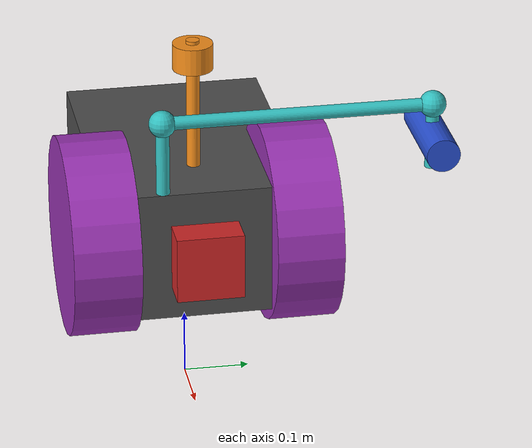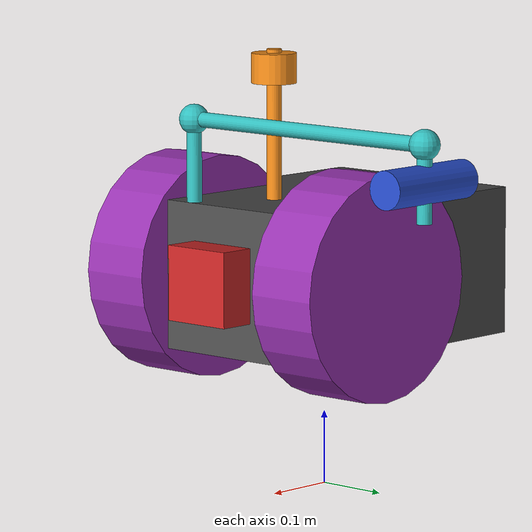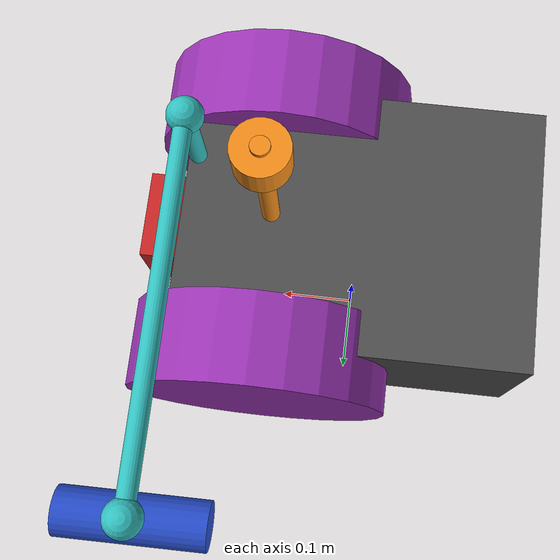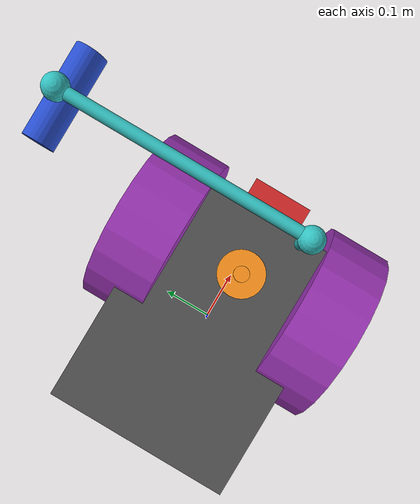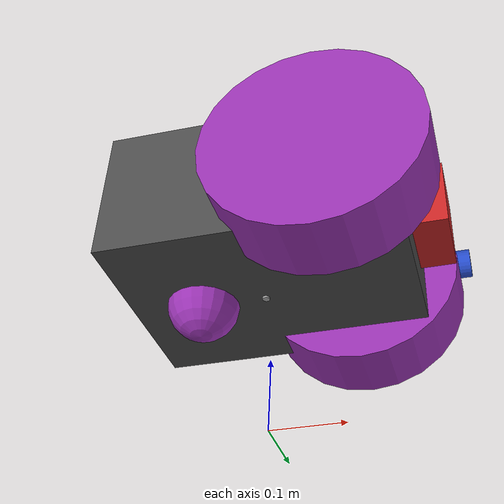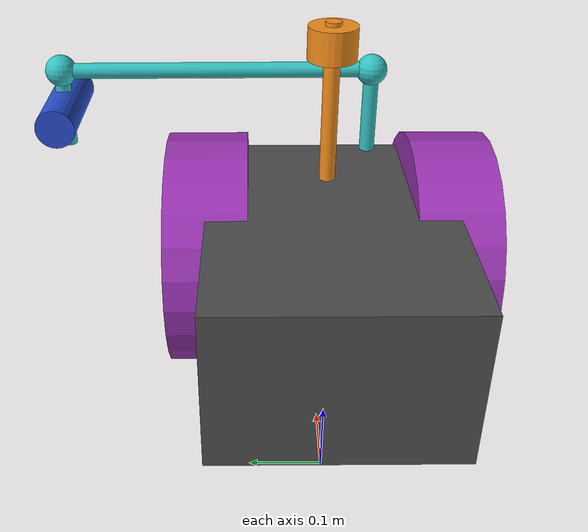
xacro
<?xml version="1.0"?>

<robot name="desherborator" xmlns:xacro="http://ros.org/wiki/xacro">
  <xacro:include filename="$(find desherborator_description)/urdf/desherborator.materials.xacro"/>
  <xacro:include filename="$(find desherborator_description)/urdf/desherborator.parameters.xacro"/>
  <xacro:include filename="$(find desherborator_description)/urdf/desherborator.link.xacro"/>
  <xacro:include filename="$(find desherborator_description)/urdf/desherborator.joint.xacro"/>
  <xacro:include filename="$(find desherborator_description)/urdf/desherborator.sensor.xacro"/>
  <xacro:include filename="$(find desherborator_description)/urdf/desherborator.wheels_controller.xacro"/>
  <xacro:include filename="$(find desherborator_description)/urdf/desherborator.arm_controller.xacro"/>

</robot>

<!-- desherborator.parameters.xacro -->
<robot name="desherborator" xmlns:xacro="http://ros.org/wiki/xacro">
    <xacro:property name="ChassisHeight" value="0.2"/>
    <xacro:property name="ChassisWidth" value="0.2"/>
    <xacro:property name="cameraSize" value="0.1"/>
    <xacro:property name="wheelRadius" value="0.15"/>
    <xacro:property name="wheelWidth" value="0.1"/>
    <xacro:property name="PI" value="3.1459"/>
    <xacro:macro name="default_inertial" params="mass">
        <inertial>
        <mass value="${mass}" />
        <inertia ixx="0.01" ixy="0.0" ixz="0.0" iyy="0.01" iyz="0.0" izz="0.01" />
        </inertial>
    </xacro:macro>
</robot>

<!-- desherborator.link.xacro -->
<robot name="desherborator" xmlns:xacro="http://ros.org/wiki/xacro">
  <!-- Base Chassis -->
  <link name="base_link"/>

  <!-- Link Chassis -->
  <link name="Chassis">
    <collision>
      <origin xyz="0 0 .1" rpy="0 0 0"/>
      <geometry>
        <box size="0.4 0.3 0.2"/>
      </geometry>
    </collision>

    <visual>
      <origin xyz="0 0 .1" rpy="0 0 0"/>
      <geometry>
        <box size="0.4 0.3 0.2"/>
      </geometry>
    </visual>

    <xacro:default_inertial mass="2.0"/>
  </link>

  <!-- Link Roue -->
  <!-- link Roue Folle -->
  <link name="RoueF">
    <collision>
      <origin xyz="0 0 0" rpy="0 0 0"/>
      <geometry>
        <sphere radius="0.05"/>
      </geometry>
    </collision>

    <visual>
      <origin xyz="0 0 0" rpy="0 0 0"/>
      <geometry>
        <sphere radius="0.05"/>
      </geometry>
    </visual>

    <xacro:default_inertial mass="0.01"/>
  </link>

  <!-- link Roue Gauche -->
  <link name="RoueG">
    <collision>
      <origin xyz="0 0 0" rpy="0 1.5707 1.5707"/>
      <geometry>
        <cylinder radius="0.15" length="0.1"/>
      </geometry>
    </collision>

    <visual>
      <origin xyz="0 0 0" rpy="0 1.5707 1.5707"/>
      <geometry>
        <cylinder radius="0.15" length="0.1"/>
      </geometry>
    </visual>

    <xacro:default_inertial mass="0.3"/>
  </link>

  <!-- link Roue Droite -->
  <link name="RoueD">
    <collision>
      <origin xyz="0 0 0" rpy="0 1.5707 1.5707"/>
      <geometry>
        <cylinder radius="0.15" length="0.1"/>
      </geometry>
    </collision>

    <visual>
      <origin xyz="0 0 0" rpy="0 1.5707 1.5707"/>
      <geometry>
        <cylinder radius="0.15" length="0.1"/>
      </geometry>
    </visual>

    <xacro:default_inertial mass="0.3"/>
  </link>

  <!-- link Mat -->
  <link name="Mat">
    <collision>
      <origin xyz="0.1 0 0.3" rpy="0 0 0"/>
      <geometry>
        <cylinder radius="0.01" length="0.2"/>
      </geometry>
    </collision>

    <visual>
      <origin xyz="0 0 0" rpy="0 0 0"/>
      <geometry>
        <cylinder radius="0.01" length="0.2"/>
      </geometry>
    </visual>

    <xacro:default_inertial mass="0.1"/>
  </link>

  <!-- link Bras -->
  <!-- link Bras Cylindre 1 -->
  <link name="BrasC1">
  <collision>
    <origin xyz="0 0 0" rpy="0 0 0"/>
    <geometry>
      <cylinder radius="0.01" length="0.25"/>
    </geometry>
  </collision>

  <visual>
    <origin xyz="0 0 0" rpy="0 0 0"/>
    <geometry>
      <cylinder radius="0.01" length="0.25"/>
    </geometry>
  </visual>

    <xacro:default_inertial mass="0.1"/>
  </link>

  <!-- link Dummy Bras Cylindre 1 -->
  <link name="BrasC1dummy">
    <collision>
      <origin xyz="0 0 0" rpy="0 0 0"/>
      <geometry>
        <cylinder radius="0.001" length="0.001"/>
      </geometry>
    </collision>

    <visual>
      <origin xyz="0 0 0" rpy="0 0 0"/>
      <geometry>
        <cylinder radius="0.001" length="0.001"/>
      </geometry>
    </visual>

    <xacro:default_inertial mass="0.001"/>
  </link>

  <!-- link Bras Cylindre 2 -->
  <link name="BrasC2">
    <collision>
      <origin xyz="0 0 0" rpy="0 ${PI/2} ${PI/2}"/>
      <geometry>
        <cylinder radius="0.01" length="0.3"/>
      </geometry>
    </collision>

    <visual>
      <origin xyz="0 0 0" rpy="0 ${PI/2} ${PI/2}"/>
      <geometry>
        <cylinder radius="0.01" length="0.4"/>
      </geometry>
    </visual>

    <xacro:default_inertial mass="0.01"/>
  </link>

  <!-- link Bras Cylindre 3 -->
  <link name="BrasC3">
    <collision>
      <origin xyz="0 0 0" rpy="0 ${PI} 0"/>
      <geometry>
        <cylinder radius="0.01" length="0.1"/>
      </geometry>
    </collision>

    <visual>
      <origin xyz="0 0 0" rpy="0 ${PI} 0"/>
      <geometry>
        <cylinder radius="0.01" length="0.1"/>
      </geometry>
    </visual>

    <xacro:default_inertial mass="0.01"/>
  </link>

  <!-- link Bras Sphere 1 -->
  <link name="BrasS1">
    <collision>
      <origin xyz="0 0 0" rpy="0 0 0"/>
      <geometry>
        <sphere radius="0.02"/>
      </geometry>
    </collision>

    <visual>
      <origin xyz="0 0 0" rpy="0 0 0"/>
      <geometry>
        <sphere radius="0.02"/>
      </geometry>
    </visual>

    <xacro:default_inertial mass="0.01"/>
  </link>

  <!-- link Bras Sphere 2 -->
  <link name="BrasS2">
    <collision>
      <origin xyz="0 0 0" rpy="0 0 0"/>
      <geometry>
        <sphere radius="0.02"/>
      </geometry>
    </collision>

    <visual>
      <origin xyz="0 0 0" rpy="0 0 0"/>
      <geometry>
        <sphere radius="0.02"/>
      </geometry>
    </visual>

    <xacro:default_inertial mass="0.01"/>
  </link>
</robot>

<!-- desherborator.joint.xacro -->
<robot name="desherborator" xmlns:xacro="http://ros.org/wiki/xacro">
        <joint name="base_joint" type="fixed">
                <parent link="base_link"/>
                <child link="Chassis"/>
                <origin xyz="0 0 0.2" rpy="0 0 0"/>
        </joint>

        <joint name="mat_attached" type="fixed">
                <parent link="Chassis"/>
                <child link="Mat"/>
                <origin xyz="0.1 0 0.3" rpy="0 0 0"/>
        </joint>

        <joint name="joint_chassis_to_roueD" type="continuous">
                <parent link="Chassis"/>
                <child link="RoueD"/>
                <origin xyz="0.1 -0.15 0.1" rpy="0 0 0"/>
                <axis  xyz="0 1 0"/>
        </joint>

        <joint name="joint_chassis_to_roueG" type="continuous">
                <parent link="Chassis"/>
                <child link="RoueG"/>
                <origin xyz="0.1 0.15 0.1" rpy="0 0 0"/>
                <axis  xyz="0 1 0"/>
        </joint>

        <joint name="joint_chassis_to_roueF" type="fixed">
                <parent link="Chassis"/>
                <child link="RoueF"/>
                <origin xyz="-0.10 0 0" rpy="0 0 0"/>
        </joint>

        <joint name="joint_chassis_to_dummy" type="prismatic">
                <parent link="Chassis"/>
                <child link="BrasC1dummy"/>
                <origin xyz="0.19 -0.06 0.2" rpy="0 0 0"/>
                <axis  xyz="0 0 1"/>
                <limit upper="0.1" effort="10" velocity="1" />
        </joint>

        <joint name="joint_dummy_to_rotating_bras" type="revolute">
                <parent link="BrasC1dummy"/>
                <child link="BrasC1"/>
                <origin xyz="0 0 0" rpy="0 0 0"/>
                <axis  xyz="0 0 1"/>
                <limit lower="-3.14" upper="0" effort="10" velocity="1" />
        </joint>

        <joint name="joint_rotating_bras_to_brasS" type="fixed">
                <parent link="BrasC1"/>
                <child link="BrasS1"/>
                <origin xyz="0 0 0.11" rpy="0 0 0"/>
        </joint>

        <joint name="joint_brasS_to_brasC" type="fixed">
                <parent link="BrasS1"/>
                <child link="BrasC2"/>
                <origin xyz="0 0.2 0" rpy="0  0  0"/>
        </joint>

        <joint name="joint_brasC_to_brasS" type="fixed">
                <parent link="BrasC2"/>
                <child link="BrasS2"/>
                <origin xyz="0 0.2 0" rpy="0 0 0"/>
        </joint>

        <joint name="end_joint" type="fixed">
                <parent link="BrasS2"/>
                <child link="BrasC3"/>
                <origin xyz="0 0 -0.05" rpy="0 0 0"/>
        </joint>

        <transmission name="trans_sliding_arm">
                <type>transmission_interface/SimpleTransmission</type>
                <joint name="joint_chassis_to_dummy">
                <hardwareInterface>EffortJointInterface</hardwareInterface>
                </joint>
                <actuator name="motor_sdiling">
                <hardwareInterface>EffortJointInterface</hardwareInterface>
                <mechanicalReduction>1</mechanicalReduction>
                </actuator>
        </transmission>

        <transmission name="trans_rotating_arm">
                <type>transmission_interface/SimpleTransmission</type>
                <joint name="joint_dummy_to_rotating_bras">
                <hardwareInterface>EffortJointInterface</hardwareInterface>
                </joint>
                <actuator name="motor_rotating">
                <hardwareInterface>EffortJointInterface</hardwareInterface>
                <mechanicalReduction>1</mechanicalReduction>
                </actuator>
        </transmission>
</robot>

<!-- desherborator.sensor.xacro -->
<robot name="desherborator" xmlns:xacro="http://ros.org/wiki/xacro">

    <link name="LIDAR">
        <visual>
        <origin xyz="0 0 0" rpy="0 0 0"/>
        <geometry>
            <cylinder radius="0.03" length="0.04"/>
        </geometry>
        </visual>
        <xacro:default_inertial mass="0.1"/>
    </link>

    <joint name="lidar_joint" type="fixed">
        <parent link="Mat"/>
        <child link="LIDAR"/>
        <origin xyz="0 0 0.075" rpy="0 0 0"/>
    </joint>

    <gazebo reference="LIDAR">
        <material>Gazebo/Orange</material>
        <sensor type="ray" name="lidar_sensor">
        <pose>0 0 0 0 0 0</pose>
        <visualize>false</visualize>
        <update_rate>40</update_rate>
        <ray>
            <scan>
            <horizontal>
                <samples>50</samples>
                <resolution>1</resolution>
                <min_angle>-3.0</min_angle>
                <max_angle>3.0</max_angle>
            </horizontal>
            </scan>
            <range>
            <min>0.120</min>
            <max>12</max>
            <resolution>0.015</resolution>
            </range>
            <noise>
            <type>gaussian</type>
            <mean>0.0</mean>
            <stddev>0.01</stddev>
            </noise>
        </ray>
        <plugin name="gazebo_ros_lds_lfcd_controller" filename="libgazebo_ros_laser.so">
            <topicName>/laser_scan</topicName>
            <!-- ENTER FRAME NAME -->
            <frameName>LIDAR</frameName>
        </plugin>
        </sensor>
    </gazebo>

    <joint name="camera_joint" type="fixed">
        <parent link="Chassis"/>
        <axis xyz="0 1 0" />
        <origin xyz="${ChassisWidth} 0 ${ChassisHeight/2}" rpy="0 0 0"/>
        <child link="Camera"/>
    </joint>

    <!-- Camera -->
    <link name="Camera">
        <collision>
        <origin xyz="0 0 0" rpy="0 0 0"/>
        <geometry>
        <box size="${cameraSize} ${cameraSize} ${cameraSize}"/>
        </geometry>
        </collision>

        <visual>
        <origin xyz="0 0 0" rpy="0 0 0"/>
        <geometry>
        <box size="${cameraSize} ${cameraSize} ${cameraSize}"/>
        </geometry>
        <material name="red"/>
        </visual>

        <inertial>
        <mass value="1e-5" />
        <origin xyz="0 0 0" rpy="0 0 0"/>
        <inertia ixx="1e-6" ixy="0" ixz="0" iyy="1e-6" iyz="0" izz="1e-6" />
        </inertial>
    </link>

    <gazebo reference="Camera">
        <material>Gazebo/Green</material>
        <sensor type="camera" name="main_camera">
            <update_rate>30.0</update_rate>
            <camera name="head">
                <horizontal_fov>1.3962634</horizontal_fov>
                <image>
                <width>1280</width>
                <height>720</height>
                <format>R8G8B8</format>
                </image>
                <clip>
                <near>0.02</near>
                <far>300</far>
                </clip>
                <noise>
                <type>gaussian</type>
                <mean>0.0</mean>
                <stddev>0.007</stddev>
                </noise>
            </camera>
            <plugin name="camera_controller" filename="libgazebo_ros_camera.so">
                <topicName>camera</topicName>
                <frameName>Camera</frameName>
                <alwaysOn>true</alwaysOn>
                <updateRate>0.0</updateRate>
                <cameraName>main_camera</cameraName>
                <imageTopicName>image_raw</imageTopicName>
                <cameraInfoTopicName>camera_info</cameraInfoTopicName>
                <frameName>camera</frameName>
                <hackBaseline>0.07</hackBaseline>
                <distortionK1>0.0</distortionK1>
                <distortionK2>0.0</distortionK2>
                <distortionK3>0.0</distortionK3>
                <distortionT1>0.0</distortionT1>
                <distortionT2>0.0</distortionT2>
            </plugin>
        </sensor>
    </gazebo>

    <link name="LASER">
        <visual>
        <origin xyz="0 0 0" rpy="0 0 0"/>
        <geometry>
            <cylinder radius="0.025" length="0.15"/>
        </geometry>
        </visual>
        <xacro:default_inertial mass="0.1"/>
    </link>

    <joint name="laser_joint" type="fixed">
        <parent link="BrasC3"/>
        <child link="LASER"/>
        <origin xyz="0 0 0" rpy="0 ${PI/2} 0"/>
    </joint>

    <gazebo reference="LASER">
        <material>Gazebo/Blue</material>
        <sensor type="ray" name="laser_sensor">
        <pose>0 0 0 0 0 0</pose>
        <visualize>true</visualize>
        <update_rate>5</update_rate>
        <ray>
            <scan>
            <horizontal>
                <samples>10</samples>
                <resolution>1</resolution>
                <min_angle>0.0</min_angle>
                <max_angle>0.1</max_angle>
            </horizontal>
            </scan>
            <range>
            <min>0.120</min>
            <max>12</max>
            <resolution>0.015</resolution>
            </range>
            <noise>
            <type>gaussian</type>
            <mean>0.0</mean>
            <stddev>0.01</stddev>
            </noise>
        </ray>
        <plugin name="gazebo_ros_lds_lfcd_controller" filename="libgazebo_ros_laser.so">
            <topicName>/laser</topicName>
            <!-- ENTER FRAME NAME -->
            <frameName>LASER</frameName>
        </plugin>
        </sensor>
    </gazebo>

    <link name="GPS_link">
        <visual>
        <origin xyz="0 0 0" rpy="0 0 0"/>
        <geometry>
            <cylinder radius="0.005" length="0.005"/>
        </geometry>
        </visual>
        <xacro:default_inertial mass="0.05"/>
    </link>

    <joint name="GPS_joint" type="fixed">
        <parent link="Chassis"/>
        <child link="GPS_link"/>
        <origin xyz="-0.01 0 0" rpy="0 0 0"/>
    </joint>

<gazebo>
    <plugin filename="libhector_gazebo_ros_gps.so" name="GPS_link">
        <alwayson>true</alwayson>
        <updateRate>10</updateRate>
        <bodyName>GPS_link</bodyName>
        <topicName>/fix</topicName>
        <velocityTopicName>/vel</velocityTopicName>
        <drift>5.0 5.0 5.0</drift>
        <gaussianNoise>0.0000001 0.0000001 0.0000001</gaussianNoise>
        <velocityDrift>0 0 0</velocityDrift>
        <velocityGaussianNoise>0.0000001 0.0000001 0.0000001</velocityGaussianNoise>
    </plugin>
</gazebo>

</robot>
